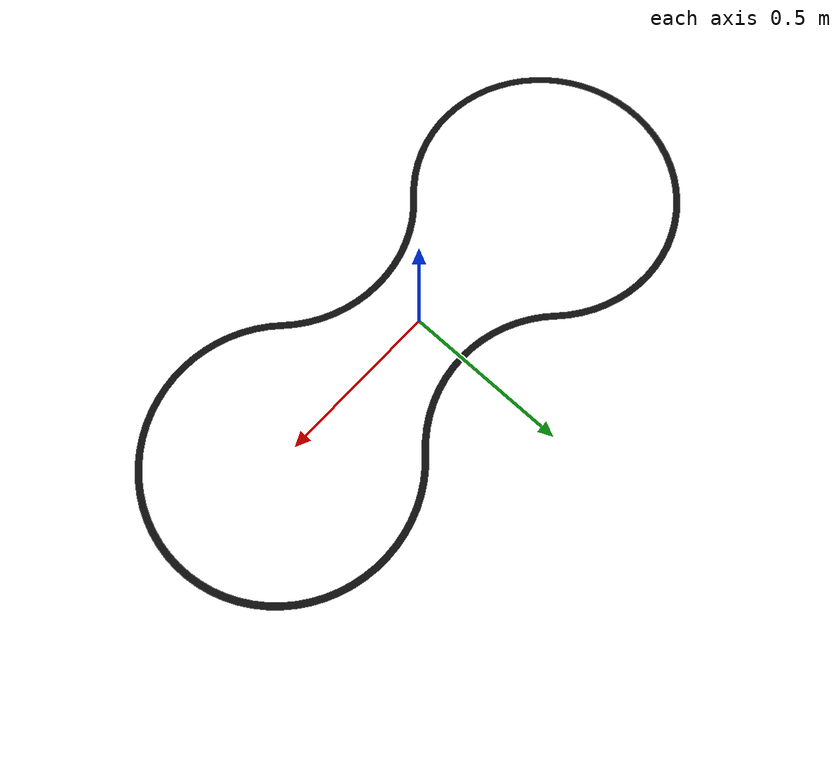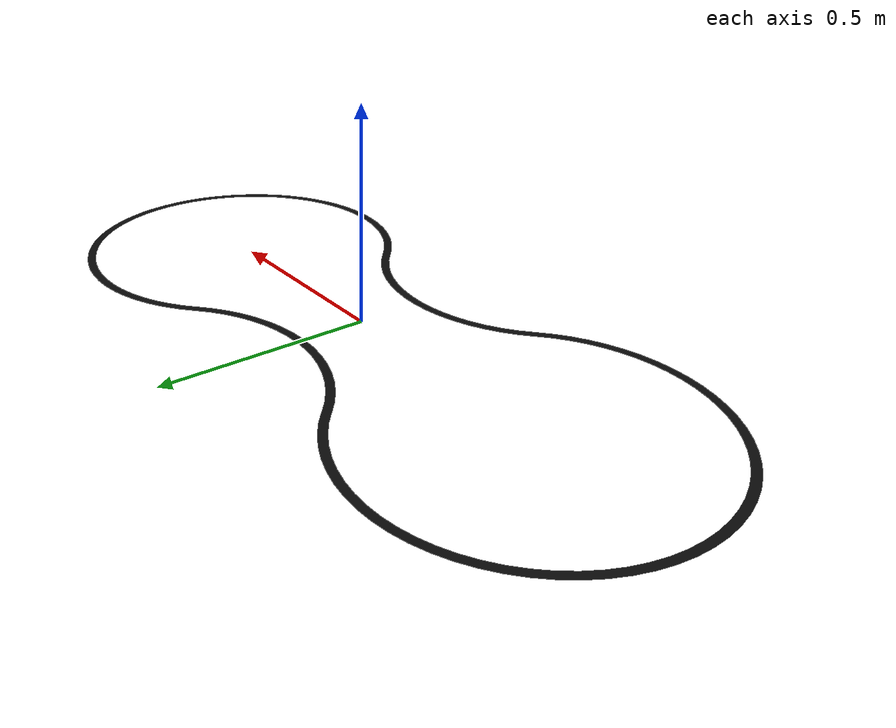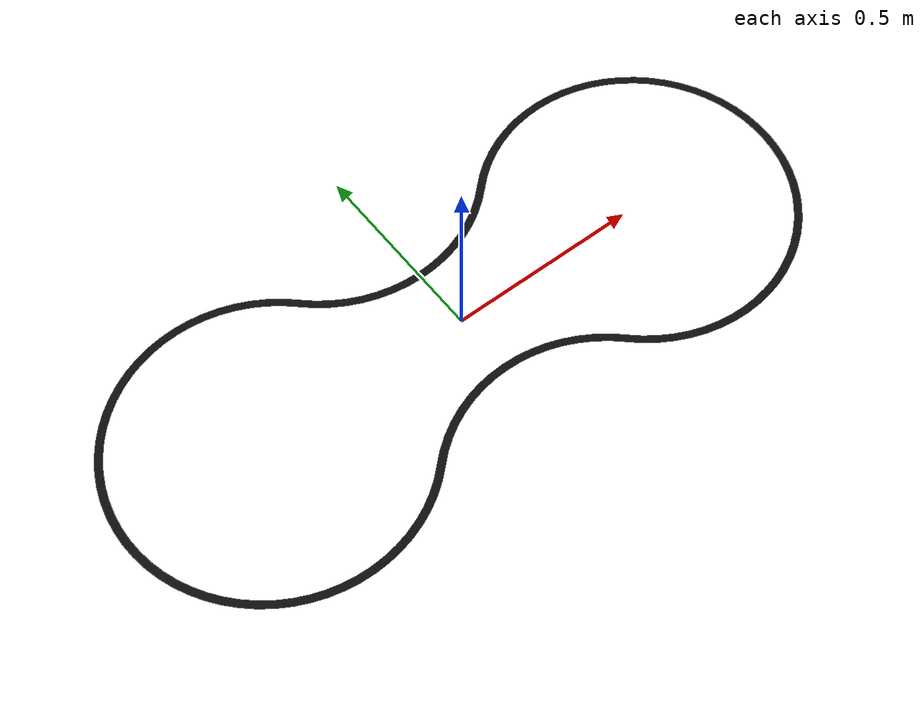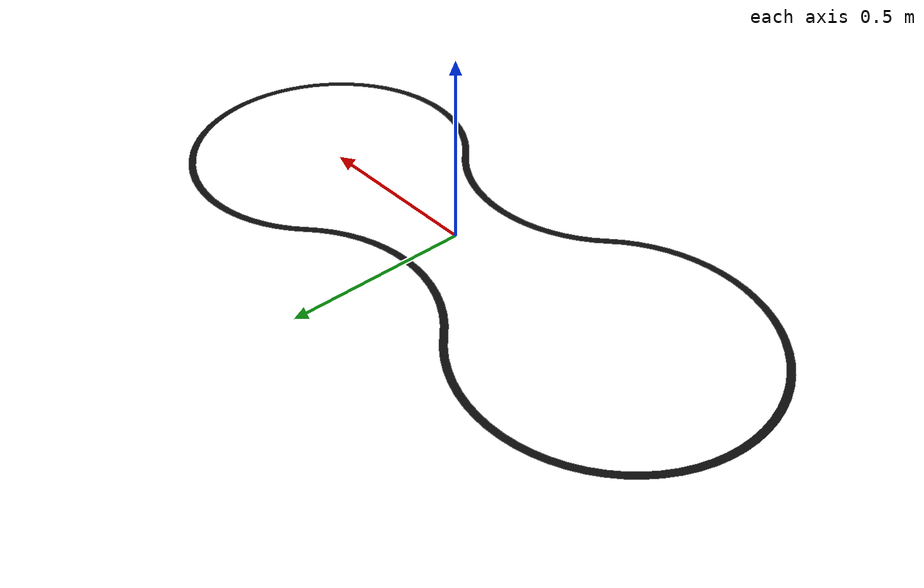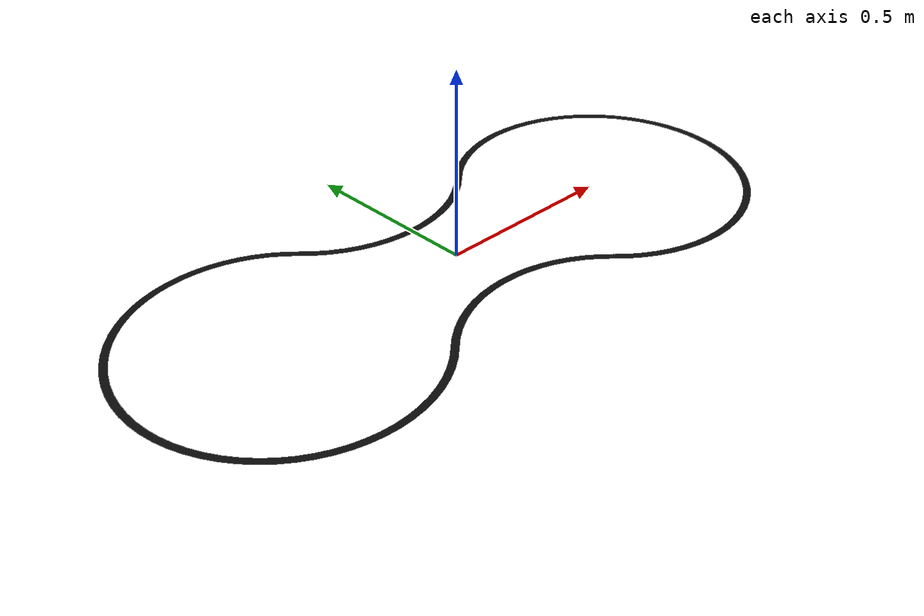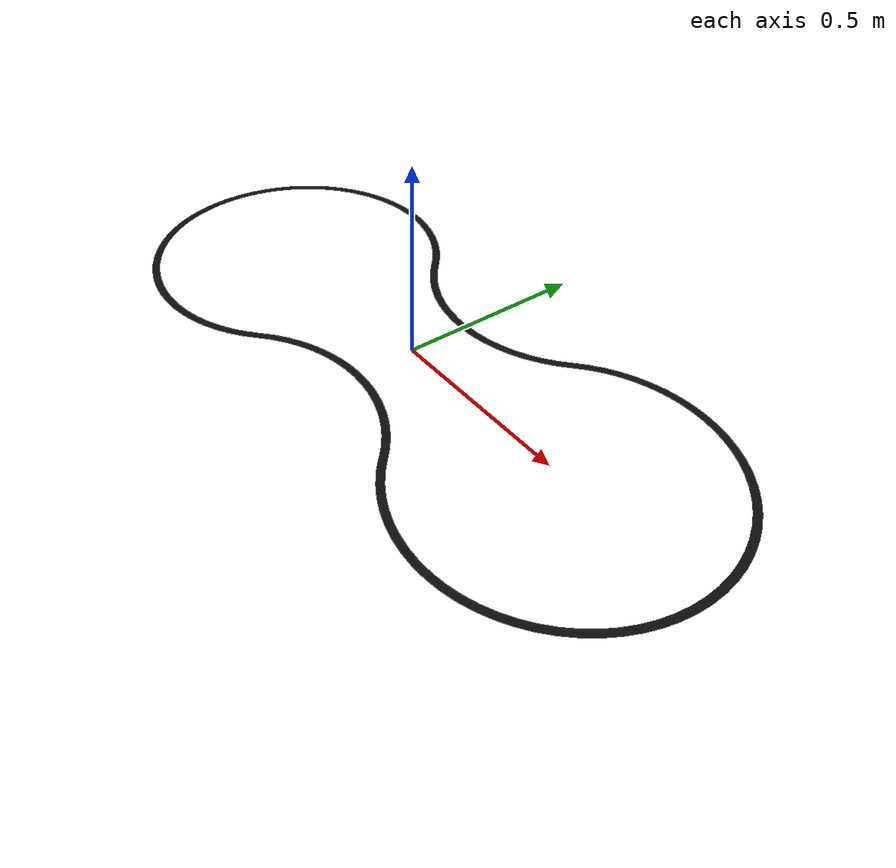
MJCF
<mujoco model="Figure8Track">
  <asset>
    <mesh name="Figure8Track" file="../../objects/tracks/Figure8Track.obj" inertia="shell"
          scale="0.01 0.005 0.01"/>
  </asset>
  <worldbody>
    <geom name="line_Figure8Track" type="mesh" mesh="Figure8Track" quat="0.70710678 0.70710678 0 0"
          pos="0.0001 -0.0000 0.002"
          contype="0" conaffinity="0" group="2" rgba="0.05 0.05 0.05 1"/>
  </worldbody>
</mujoco>
